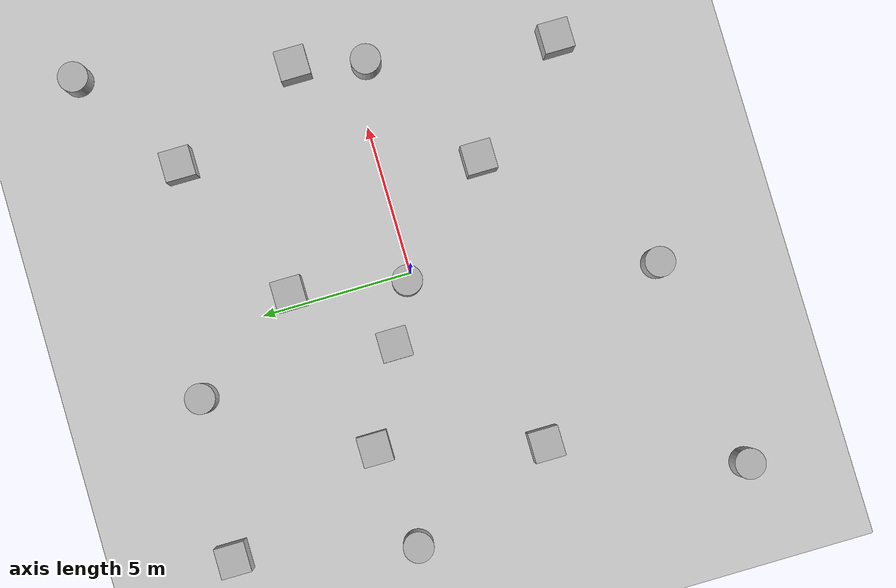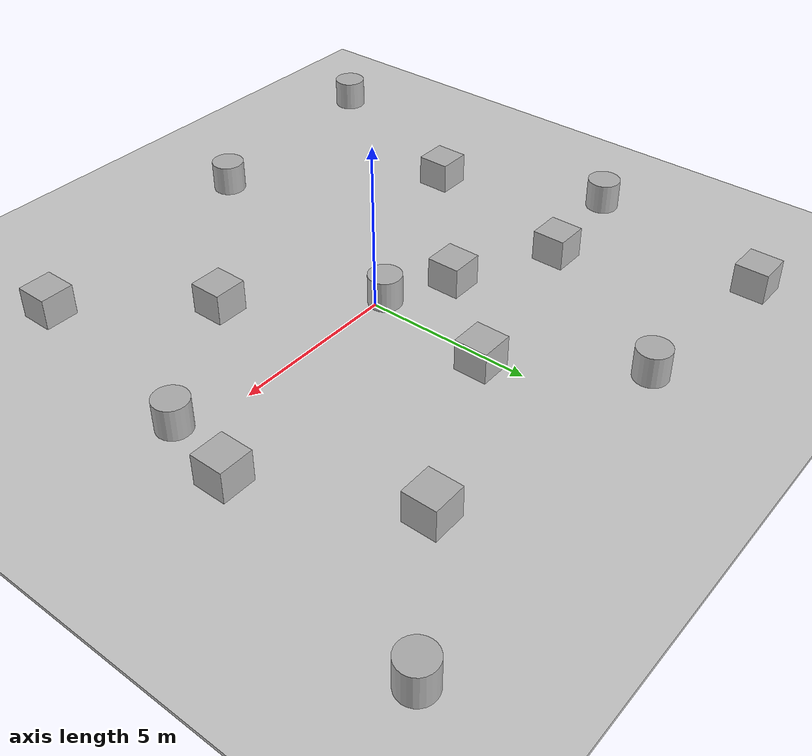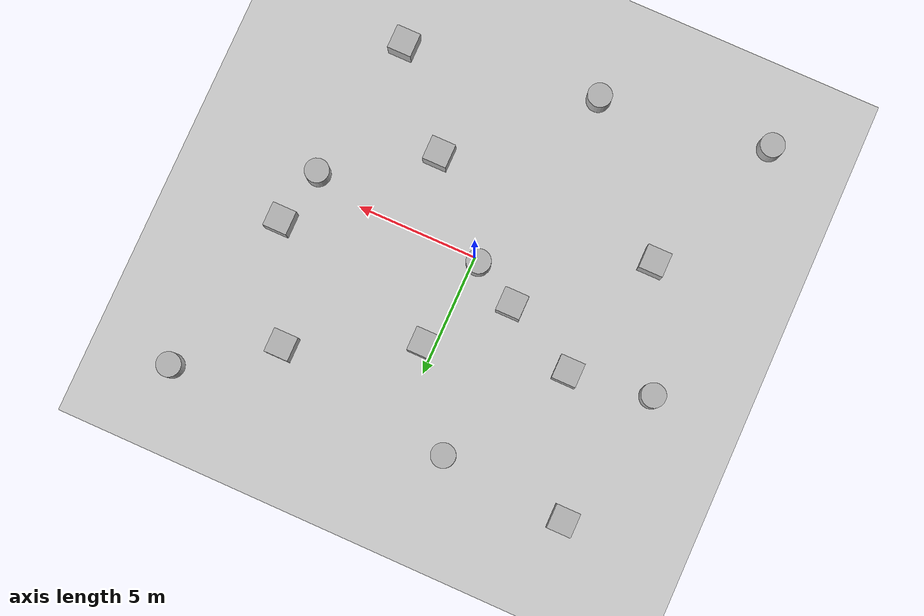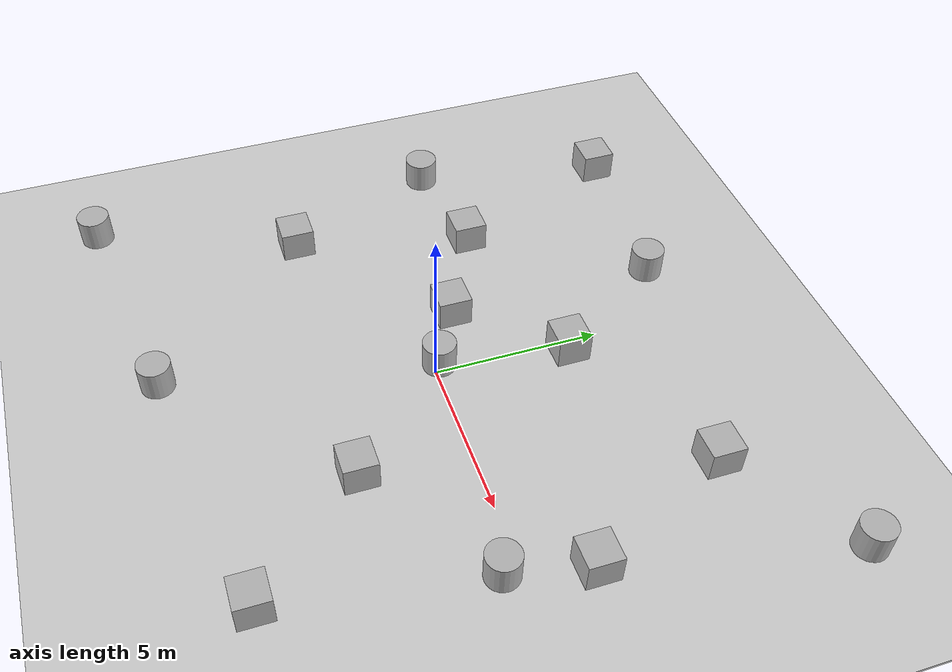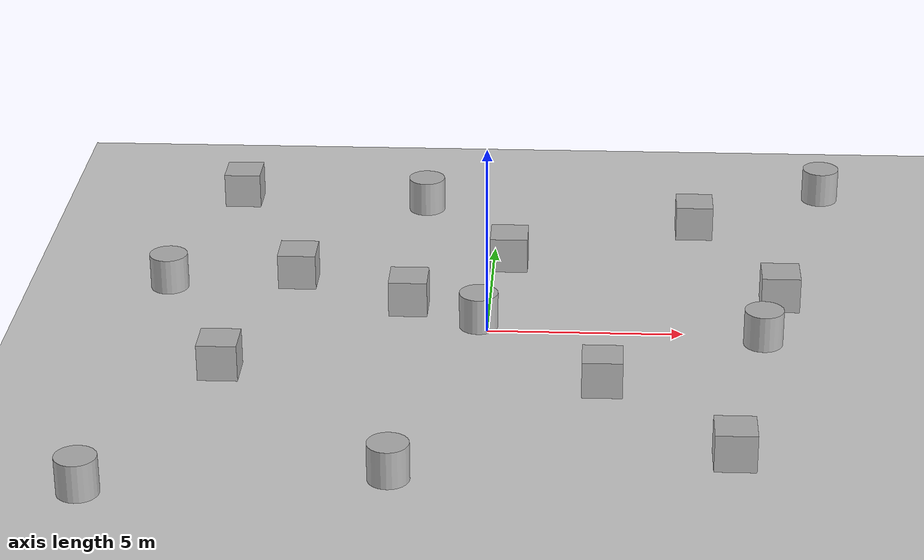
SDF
<sdf version='1.10'>
  <world name='empty'>
    <physics name='1ms' type='ignored'>
      <max_step_size>0.001</max_step_size>
      <real_time_factor>1</real_time_factor>
      <real_time_update_rate>1000</real_time_update_rate>
    </physics>
    <plugin name='gz::sim::systems::Physics' filename='gz-sim-physics-system'/>
    <plugin name='gz::sim::systems::UserCommands' filename='gz-sim-user-commands-system'/>
    <plugin name='gz::sim::systems::SceneBroadcaster' filename='gz-sim-scene-broadcaster-system'/>
    <plugin name='gz::sim::systems::Contact' filename='gz-sim-contact-system'/>
    <plugin filename="gz-sim-sensors-system" name="gz::sim::systems::Sensors">
      <render_engine>ogre2</render_engine>
    </plugin>
    <plugin filename="gz-sim-imu-system" name="gz::sim::systems::Imu"/>
    <gravity>0 0 -9.8000000000000007</gravity>
    <magnetic_field>5.5644999999999998e-06 2.2875799999999999e-05 -4.2388400000000002e-05</magnetic_field>
    <atmosphere type='adiabatic'/>
    <scene>
      <ambient>0.400000006 0.400000006 0.400000006 1</ambient>
      <background>0.699999988 0.699999988 0.699999988 1</background>
      <shadows>true</shadows>
    </scene>
    <model name='ground_plane'>
      <static>true</static>
      <link name='link'>
        <collision name='collision'>
          <geometry>
            <plane>
              <normal>0 0 1</normal>
              <size>100 100</size>
            </plane>
          </geometry>
          <surface>
            <friction>
              <ode/>
            </friction>
            <bounce/>
            <contact/>
          </surface>
        </collision>
        <visual name='visual'>
          <geometry>
            <plane>
              <normal>0 0 1</normal>
              <size>100 100</size>
            </plane>
          </geometry>
          <material>
            <ambient>0.800000012 0.800000012 0.800000012 1</ambient>
            <diffuse>0.800000012 0.800000012 0.800000012 1</diffuse>
            <specular>0.800000012 0.800000012 0.800000012 1</specular>
          </material>
        </visual>
        <pose>0 0 0 0 0 0</pose>
        <inertial>
          <pose>0 0 0 0 0 0</pose>
          <mass>1</mass>
          <inertia>
            <ixx>1</ixx>
            <ixy>0</ixy>
            <ixz>0</ixz>
            <iyy>1</iyy>
            <iyz>0</iyz>
            <izz>1</izz>
          </inertia>
        </inertial>
        <enable_wind>false</enable_wind>
      </link>
      <pose>0 0 0 0 0 0</pose>
      <self_collide>false</self_collide>
    </model>
    <model name='box'>
      <pose>-7.2664229478641413 8.001959563005741 0.5 0 0 0</pose>
      <link name='box_link'>
        <inertial>
          <inertia>
            <ixx>0.16666</ixx>
            <ixy>0</ixy>
            <ixz>0</ixz>
            <iyy>0.16666</iyy>
            <iyz>0</iyz>
            <izz>0.16666</izz>
          </inertia>
          <mass>1</mass>
          <pose>0 0 0 0 0 0</pose>
        </inertial>
        <collision name='box_collision'>
          <geometry>
            <box>
              <size>1 1 1</size>
            </box>
          </geometry>
          <surface>
            <friction>
              <ode/>
            </friction>
            <bounce/>
            <contact/>
          </surface>
        </collision>
        <visual name='box_visual'>
          <geometry>
            <box>
              <size>1 1 1</size>
            </box>
          </geometry>
          <material>
            <ambient>0.300000012 0.300000012 0.300000012 1</ambient>
            <diffuse>0.699999988 0.699999988 0.699999988 1</diffuse>
            <specular>1 1 1 1</specular>
          </material>
        </visual>
        <pose>0 0 0 0 0 0</pose>
        <enable_wind>false</enable_wind>
      </link>
      <static>false</static>
      <self_collide>false</self_collide>
    </model>
    <model name='box_0'>
      <pose>6.0330559122916796 -6.6597615887634198 0.5 0 0 0</pose>
      <link name='box_link'>
        <inertial>
          <inertia>
            <ixx>0.16666</ixx>
            <ixy>0</ixy>
            <ixz>0</ixz>
            <iyy>0.16666</iyy>
            <iyz>0</iyz>
            <izz>0.16666</izz>
          </inertia>
          <mass>1</mass>
          <pose>0 0 0 0 0 0</pose>
        </inertial>
        <collision name='box_collision'>
          <geometry>
            <box>
              <size>1 1 1</size>
            </box>
          </geometry>
          <surface>
            <friction>
              <ode/>
            </friction>
            <bounce/>
            <contact/>
          </surface>
        </collision>
        <visual name='box_visual'>
          <geometry>
            <box>
              <size>1 1 1</size>
            </box>
          </geometry>
          <material>
            <ambient>0.300000012 0.300000012 0.300000012 1</ambient>
            <diffuse>0.699999988 0.699999988 0.699999988 1</diffuse>
            <specular>1 1 1 1</specular>
          </material>
        </visual>
        <pose>0 0 0 0 0 0</pose>
        <enable_wind>false</enable_wind>
      </link>
      <static>false</static>
      <self_collide>false</self_collide>
    </model>
    <model name='box_1'>
      <pose>5.4431378589945663 6.2501473488965873 0.5 0 0 0</pose>
      <link name='box_link'>
        <inertial>
          <inertia>
            <ixx>0.16666</ixx>
            <ixy>0</ixy>
            <ixz>0</ixz>
            <iyy>0.16666</iyy>
            <iyz>0</iyz>
            <izz>0.16666</izz>
          </inertia>
          <mass>1</mass>
          <pose>0 0 0 0 0 0</pose>
        </inertial>
        <collision name='box_collision'>
          <geometry>
            <box>
              <size>1 1 1</size>
            </box>
          </geometry>
          <surface>
            <friction>
              <ode/>
            </friction>
            <bounce/>
            <contact/>
          </surface>
        </collision>
        <visual name='box_visual'>
          <geometry>
            <box>
              <size>1 1 1</size>
            </box>
          </geometry>
          <material>
            <ambient>0.300000012 0.300000012 0.300000012 1</ambient>
            <diffuse>0.699999988 0.699999988 0.699999988 1</diffuse>
            <specular>1 1 1 1</specular>
          </material>
        </visual>
        <pose>0 0 0 0 0 0</pose>
        <enable_wind>false</enable_wind>
      </link>
      <static>false</static>
      <self_collide>false</self_collide>
    </model>
    <model name='ground_plane_1'>
      <static>true</static>
      <link name='link'>
        <collision name='collision'>
          <geometry>
            <plane>
              <normal>0 0 1</normal>
              <size>100 100</size>
            </plane>
          </geometry>
          <surface>
            <friction>
              <ode/>
            </friction>
            <bounce/>
            <contact/>
          </surface>
        </collision>
        <visual name='visual'>
          <geometry>
            <plane>
              <normal>0 0 1</normal>
              <size>100 100</size>
            </plane>
          </geometry>
          <material>
            <ambient>0.800000012 0.800000012 0.800000012 1</ambient>
            <diffuse>0.800000012 0.800000012 0.800000012 1</diffuse>
            <specular>0.800000012 0.800000012 0.800000012 1</specular>
          </material>
        </visual>
      </link>
      <pose>5.8856477409981078 6.8674950587699826 0 0 0 0</pose>
      <self_collide>false</self_collide>
    </model>
    <model name='box_1_1'>
      <pose>-2.0925876761833555 1.1406302052938266 0.5 0 0 0</pose>
      <link name='box_link'>
        <inertial>
          <inertia>
            <ixx>0.16666</ixx>
            <ixy>0</ixy>
            <ixz>0</ixz>
            <iyy>0.16666</iyy>
            <iyz>0</iyz>
            <izz>0.16666</izz>
          </inertia>
          <mass>1</mass>
        </inertial>
        <collision name='box_collision'>
          <geometry>
            <box>
              <size>1 1 1</size>
            </box>
          </geometry>
          <surface>
            <friction>
              <ode/>
            </friction>
            <bounce/>
            <contact/>
          </surface>
        </collision>
        <visual name='box_visual'>
          <geometry>
            <box>
              <size>1 1 1</size>
            </box>
          </geometry>
          <material>
            <ambient>0.300000012 0.300000012 0.300000012 1</ambient>
            <diffuse>0.699999988 0.699999988 0.699999988 1</diffuse>
            <specular>1 1 1 1</specular>
          </material>
        </visual>
      </link>
      <static>false</static>
      <self_collide>false</self_collide>
    </model>
    <model name='box_1_2'>
      <pose>0.41984665652474096 3.952707647567669 0.5 0 0 0</pose>
      <link name='box_link'>
        <inertial>
          <inertia>
            <ixx>0.16666</ixx>
            <ixy>0</ixy>
            <ixz>0</ixz>
            <iyy>0.16666</iyy>
            <iyz>0</iyz>
            <izz>0.16666</izz>
          </inertia>
          <mass>1</mass>
        </inertial>
        <collision name='box_collision'>
          <geometry>
            <box>
              <size>1 1 1</size>
            </box>
          </geometry>
          <surface>
            <friction>
              <ode/>
            </friction>
            <bounce/>
            <contact/>
          </surface>
        </collision>
        <visual name='box_visual'>
          <geometry>
            <box>
              <size>1 1 1</size>
            </box>
          </geometry>
          <material>
            <ambient>0.300000012 0.300000012 0.300000012 1</ambient>
            <diffuse>0.699999988 0.699999988 0.699999988 1</diffuse>
            <specular>1 1 1 1</specular>
          </material>
        </visual>
      </link>
      <static>false</static>
      <self_collide>false</self_collide>
    </model>
    <model name='box_1_3'>
      <pose>2.9450058535421952 -3.1553020894889903 0.5 0 0 0</pose>
      <link name='box_link'>
        <inertial>
          <inertia>
            <ixx>0.16666</ixx>
            <ixy>0</ixy>
            <ixz>0</ixz>
            <iyy>0.16666</iyy>
            <iyz>0</iyz>
            <izz>0.16666</izz>
          </inertia>
          <mass>1</mass>
        </inertial>
        <collision name='box_collision'>
          <geometry>
            <box>
              <size>1 1 1</size>
            </box>
          </geometry>
          <surface>
            <friction>
              <ode/>
            </friction>
            <bounce/>
            <contact/>
          </surface>
        </collision>
        <visual name='box_visual'>
          <geometry>
            <box>
              <size>1 1 1</size>
            </box>
          </geometry>
          <material>
            <ambient>0.300000012 0.300000012 0.300000012 1</ambient>
            <diffuse>0.699999988 0.699999988 0.699999988 1</diffuse>
            <specular>1 1 1 1</specular>
          </material>
        </visual>
      </link>
      <static>false</static>
      <self_collide>false</self_collide>
    </model>
    <model name='box_1_4'>
      <pose>-6.5208503423678597 -2.643676608655257 0.5 0 0 0</pose>
      <link name='box_link'>
        <inertial>
          <inertia>
            <ixx>0.16666</ixx>
            <ixy>0</ixy>
            <ixz>0</ixz>
            <iyy>0.16666</iyy>
            <iyz>0</iyz>
            <izz>0.16666</izz>
          </inertia>
          <mass>1</mass>
        </inertial>
        <collision name='box_collision'>
          <geometry>
            <box>
              <size>1 1 1</size>
            </box>
          </geometry>
          <surface>
            <friction>
              <ode/>
            </friction>
            <bounce/>
            <contact/>
          </surface>
        </collision>
        <visual name='box_visual'>
          <geometry>
            <box>
              <size>1 1 1</size>
            </box>
          </geometry>
          <material>
            <ambient>0.300000012 0.300000012 0.300000012 1</ambient>
            <diffuse>0.699999988 0.699999988 0.699999988 1</diffuse>
            <specular>1 1 1 1</specular>
          </material>
        </visual>
      </link>
      <static>false</static>
      <self_collide>false</self_collide>
    </model>
    <model name='box_1_5'>
      <pose>-5.1389123843084468 2.6679012426387785 0.5 0 0 0</pose>
      <link name='box_link'>
        <inertial>
          <inertia>
            <ixx>0.16666</ixx>
            <ixy>0</ixy>
            <ixz>0</ixz>
            <iyy>0.16666</iyy>
            <iyz>0</iyz>
            <izz>0.16666</izz>
          </inertia>
          <mass>1</mass>
        </inertial>
        <collision name='box_collision'>
          <geometry>
            <box>
              <size>1 1 1</size>
            </box>
          </geometry>
          <surface>
            <friction>
              <ode/>
            </friction>
            <bounce/>
            <contact/>
          </surface>
        </collision>
        <visual name='box_visual'>
          <geometry>
            <box>
              <size>1 1 1</size>
            </box>
          </geometry>
          <material>
            <ambient>0.300000012 0.300000012 0.300000012 1</ambient>
            <diffuse>0.699999988 0.699999988 0.699999988 1</diffuse>
            <specular>1 1 1 1</specular>
          </material>
        </visual>
      </link>
      <static>false</static>
      <self_collide>false</self_collide>
    </model>
    <model name='box_1_6'>
      <pose>7.5589287411919539 1.7904647676761927 0.5 0 0 0</pose>
      <link name='box_link'>
        <inertial>
          <inertia>
            <ixx>0.16666</ixx>
            <ixy>0</ixy>
            <ixz>0</ixz>
            <iyy>0.16666</iyy>
            <iyz>0</iyz>
            <izz>0.16666</izz>
          </inertia>
          <mass>1</mass>
        </inertial>
        <collision name='box_collision'>
          <geometry>
            <box>
              <size>1 1 1</size>
            </box>
          </geometry>
          <surface>
            <friction>
              <ode/>
            </friction>
            <bounce/>
            <contact/>
          </surface>
        </collision>
        <visual name='box_visual'>
          <geometry>
            <box>
              <size>1 1 1</size>
            </box>
          </geometry>
          <material>
            <ambient>0.300000012 0.300000012 0.300000012 1</ambient>
            <diffuse>0.699999988 0.699999988 0.699999988 1</diffuse>
            <specular>1 1 1 1</specular>
          </material>
        </visual>
      </link>
      <static>false</static>
      <self_collide>false</self_collide>
    </model>
    <model name='cylinder'>
      <pose>-2.0379437450152151 7.5994624848365868 0.5 0 0 0</pose>
      <link name='cylinder_link'>
        <inertial>
          <inertia>
            <ixx>0.14580000000000001</ixx>
            <ixy>0</ixy>
            <ixz>0</ixz>
            <iyy>0.14580000000000001</iyy>
            <iyz>0</iyz>
            <izz>0.125</izz>
          </inertia>
          <mass>1</mass>
          <pose>0 0 0 0 0 0</pose>
        </inertial>
        <collision name='cylinder_collision'>
          <geometry>
            <cylinder>
              <radius>0.5</radius>
              <length>1</length>
            </cylinder>
          </geometry>
          <surface>
            <friction>
              <ode/>
            </friction>
            <bounce/>
            <contact/>
          </surface>
        </collision>
        <visual name='cylinder_visual'>
          <geometry>
            <cylinder>
              <radius>0.5</radius>
              <length>1</length>
            </cylinder>
          </geometry>
          <material>
            <ambient>0.300000012 0.300000012 0.300000012 1</ambient>
            <diffuse>0.699999988 0.699999988 0.699999988 1</diffuse>
            <specular>1 1 1 1</specular>
          </material>
        </visual>
        <pose>0 0 0 0 0 0</pose>
        <enable_wind>false</enable_wind>
      </link>
      <static>false</static>
      <self_collide>false</self_collide>
    </model>
    <model name='cylinder_1'>
      <pose>-8.5217671879853594 2.201041515387407 0.5 0 0 0</pose>
      <link name='cylinder_link'>
        <inertial>
          <inertia>
            <ixx>0.14580000000000001</ixx>
            <ixy>0</ixy>
            <ixz>0</ixz>
            <iyy>0.14580000000000001</iyy>
            <iyz>0</iyz>
            <izz>0.125</izz>
          </inertia>
          <mass>1</mass>
        </inertial>
        <collision name='cylinder_collision'>
          <geometry>
            <cylinder>
              <radius>0.5</radius>
              <length>1</length>
            </cylinder>
          </geometry>
          <surface>
            <friction>
              <ode/>
            </friction>
            <bounce/>
            <contact/>
          </surface>
        </collision>
        <visual name='cylinder_visual'>
          <geometry>
            <cylinder>
              <radius>0.5</radius>
              <length>1</length>
            </cylinder>
          </geometry>
          <material>
            <ambient>0.300000012 0.300000012 0.300000012 1</ambient>
            <diffuse>0.699999988 0.699999988 0.699999988 1</diffuse>
            <specular>1 1 1 1</specular>
          </material>
        </visual>
      </link>
      <static>false</static>
      <self_collide>false</self_collide>
    </model>
    <model name='cylinder_2'>
      <pose>-1.9285283423070976 -7.792672292694327 0.5 0 0 0</pose>
      <link name='cylinder_link'>
        <inertial>
          <inertia>
            <ixx>0.14580000000000001</ixx>
            <ixy>0</ixy>
            <ixz>0</ixz>
            <iyy>0.14580000000000001</iyy>
            <iyz>0</iyz>
            <izz>0.125</izz>
          </inertia>
          <mass>1</mass>
        </inertial>
        <collision name='cylinder_collision'>
          <geometry>
            <cylinder>
              <radius>0.5</radius>
              <length>1</length>
            </cylinder>
          </geometry>
          <surface>
            <friction>
              <ode/>
            </friction>
            <bounce/>
            <contact/>
          </surface>
        </collision>
        <visual name='cylinder_visual'>
          <geometry>
            <cylinder>
              <radius>0.5</radius>
              <length>1</length>
            </cylinder>
          </geometry>
          <material>
            <ambient>0.300000012 0.300000012 0.300000012 1</ambient>
            <diffuse>0.699999988 0.699999988 0.699999988 1</diffuse>
            <specular>1 1 1 1</specular>
          </material>
        </visual>
      </link>
      <static>false</static>
      <self_collide>false</self_collide>
    </model>
    <model name='cylinder_3'>
      <pose>-0.23170090689891465 0.17372997756641428 0.5 0 0 0</pose>
      <link name='cylinder_link'>
        <inertial>
          <inertia>
            <ixx>0.14580000000000001</ixx>
            <ixy>0</ixy>
            <ixz>0</ixz>
            <iyy>0.14580000000000001</iyy>
            <iyz>0</iyz>
            <izz>0.125</izz>
          </inertia>
          <mass>1</mass>
        </inertial>
        <collision name='cylinder_collision'>
          <geometry>
            <cylinder>
              <radius>0.5</radius>
              <length>1</length>
            </cylinder>
          </geometry>
          <surface>
            <friction>
              <ode/>
            </friction>
            <bounce/>
            <contact/>
          </surface>
        </collision>
        <visual name='cylinder_visual'>
          <geometry>
            <cylinder>
              <radius>0.5</radius>
              <length>1</length>
            </cylinder>
          </geometry>
          <material>
            <ambient>0.300000012 0.300000012 0.300000012 1</ambient>
            <diffuse>0.699999988 0.699999988 0.699999988 1</diffuse>
            <specular>1 1 1 1</specular>
          </material>
        </visual>
      </link>
      <static>false</static>
      <self_collide>false</self_collide>
    </model>
    <model name='cylinder_4'>
      <pose>9.0908475155126158 8.7140515046431091 0.5 0 0 0</pose>
      <link name='cylinder_link'>
        <inertial>
          <inertia>
            <ixx>0.14580000000000001</ixx>
            <ixy>0</ixy>
            <ixz>0</ixz>
            <iyy>0.14580000000000001</iyy>
            <iyz>0</iyz>
            <izz>0.125</izz>
          </inertia>
          <mass>1</mass>
        </inertial>
        <collision name='cylinder_collision'>
          <geometry>
            <cylinder>
              <radius>0.5</radius>
              <length>1</length>
            </cylinder>
          </geometry>
          <surface>
            <friction>
              <ode/>
            </friction>
            <bounce/>
            <contact/>
          </surface>
        </collision>
        <visual name='cylinder_visual'>
          <geometry>
            <cylinder>
              <radius>0.5</radius>
              <length>1</length>
            </cylinder>
          </geometry>
          <material>
            <ambient>0.300000012 0.300000012 0.300000012 1</ambient>
            <diffuse>0.699999988 0.699999988 0.699999988 1</diffuse>
            <specular>1 1 1 1</specular>
          </material>
        </visual>
      </link>
      <static>false</static>
      <self_collide>false</self_collide>
    </model>
    <model name='cylinder_5'>
      <pose>-8.9233435822444385 -8.7101261716177483 0.5 0 0 0</pose>
      <link name='cylinder_link'>
        <inertial>
          <inertia>
            <ixx>0.14580000000000001</ixx>
            <ixy>0</ixy>
            <ixz>0</ixz>
            <iyy>0.14580000000000001</iyy>
            <iyz>0</iyz>
            <izz>0.125</izz>
          </inertia>
          <mass>1</mass>
        </inertial>
        <collision name='cylinder_collision'>
          <geometry>
            <cylinder>
              <radius>0.5</radius>
              <length>1</length>
            </cylinder>
          </geometry>
          <surface>
            <friction>
              <ode/>
            </friction>
            <bounce/>
            <contact/>
          </surface>
        </collision>
        <visual name='cylinder_visual'>
          <geometry>
            <cylinder>
              <radius>0.5</radius>
              <length>1</length>
            </cylinder>
          </geometry>
          <material>
            <ambient>0.300000012 0.300000012 0.300000012 1</ambient>
            <diffuse>0.699999988 0.699999988 0.699999988 1</diffuse>
            <specular>1 1 1 1</specular>
          </material>
        </visual>
      </link>
      <static>false</static>
      <self_collide>false</self_collide>
    </model>
    <model name='cylinder_6'>
      <pose>7.0176003287278821 -0.52406950820931186 0.5 0 0 0</pose>
      <link name='cylinder_link'>
        <inertial>
          <inertia>
            <ixx>0.14580000000000001</ixx>
            <ixy>0</ixy>
            <ixz>0</ixz>
            <iyy>0.14580000000000001</iyy>
            <iyz>0</iyz>
            <izz>0.125</izz>
          </inertia>
          <mass>1</mass>
        </inertial>
        <collision name='cylinder_collision'>
          <geometry>
            <cylinder>
              <radius>0.5</radius>
              <length>1</length>
            </cylinder>
          </geometry>
          <surface>
            <friction>
              <ode/>
            </friction>
            <bounce/>
            <contact/>
          </surface>
        </collision>
        <visual name='cylinder_visual'>
          <geometry>
            <cylinder>
              <radius>0.5</radius>
              <length>1</length>
            </cylinder>
          </geometry>
          <material>
            <ambient>0.300000012 0.300000012 0.300000012 1</ambient>
            <diffuse>0.699999988 0.699999988 0.699999988 1</diffuse>
            <specular>1 1 1 1</specular>
          </material>
        </visual>
      </link>
      <static>false</static>
      <self_collide>false</self_collide>
    </model>
    <light name='sun' type='directional'>
      <pose>0 0 10 0 0 0</pose>
      <cast_shadows>true</cast_shadows>
      <intensity>1</intensity>
      <direction>-0.5 0.10000000000000001 -0.90000000000000002</direction>
      <diffuse>0.800000012 0.800000012 0.800000012 1</diffuse>
      <specular>0.200000003 0.200000003 0.200000003 1</specular>
      <attenuation>
        <range>1000</range>
        <linear>0.01</linear>
        <constant>0.90000000000000002</constant>
        <quadratic>0.001</quadratic>
      </attenuation>
      <spot>
        <inner_angle>0</inner_angle>
        <outer_angle>0</outer_angle>
        <falloff>0</falloff>
      </spot>
    </light>
  </world>
</sdf>
